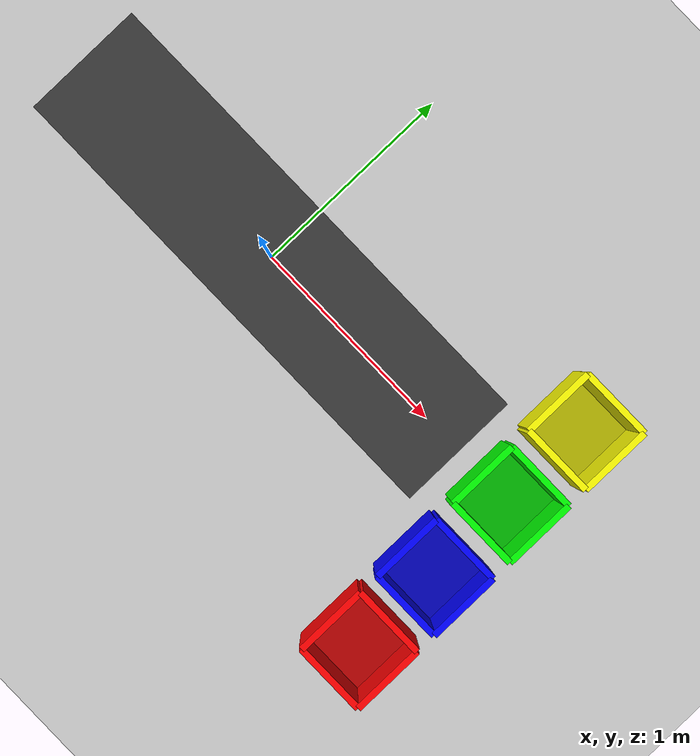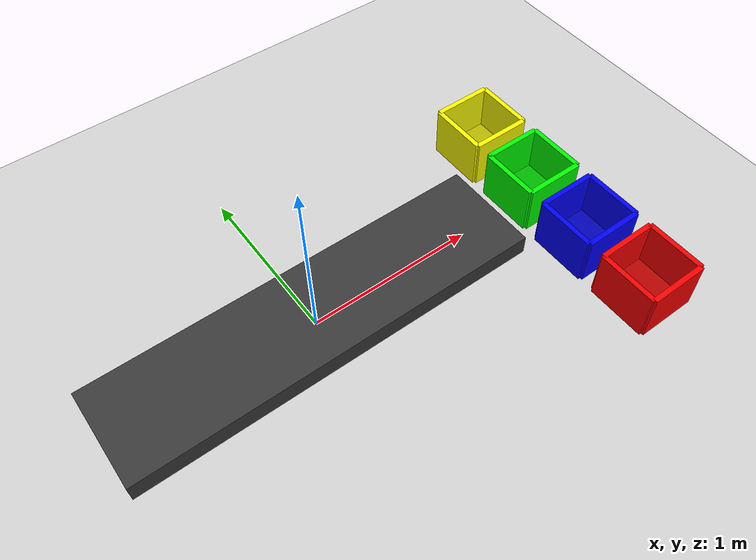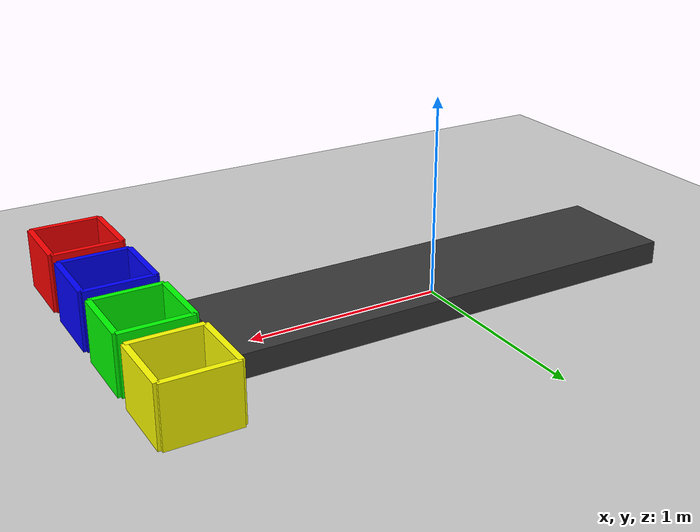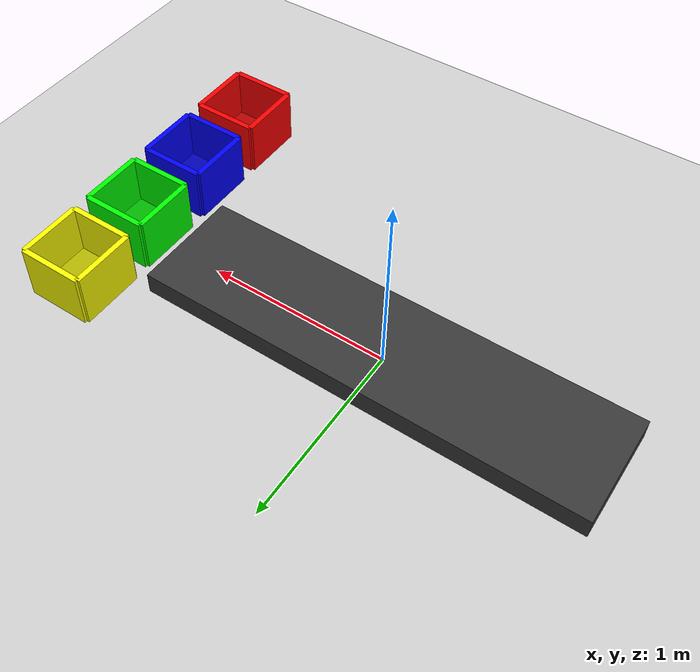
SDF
<?xml version="1.0" ?>
<sdf version="1.6">
  <world name="default">

    <include>
      <uri>model://ground_plane</uri>
    </include>

    <include>
      <uri>model://sun</uri>
    </include>

    <physics type="ode">
      <gravity>0 0 -9.8</gravity>
      <max_step_size>0.001</max_step_size>
      <real_time_factor>1</real_time_factor>
      <real_time_update_rate>1000</real_time_update_rate>
    </physics>

    <!-- KONVEYÖR ARTIK DOĞRUDAN WORLD İÇİNDE -->
    <model name="ws_conveyor_belt">
      <static>true</static>
      <pose>0 0 0.06 0 0 0</pose>

      <link name="belt">
        <pose>0 0 0 0 0 0</pose>

        <collision name="collision">
          <geometry>
            <box>
              <size>2.4 0.6 0.12</size>
            </box>
          </geometry>
          <surface>
            <friction>
              <ode>
                <mu>100.0</mu>
                <mu2>100.0</mu2>
                <fdir1>1 0 0</fdir1>
                <slip1>0.0</slip1>
                <slip2>0.0</slip2>
              </ode>
            </friction>
            <bounce/>
            <contact>
              <ode>
                <kp>1000000.0</kp>
                <kd>100.0</kd>
                <max_vel>1.0</max_vel>
                <min_depth>0.001</min_depth>
              </ode>
            </contact>
          </surface>
        </collision>

        <visual name="visual">
          <geometry>
            <box>
              <size>2.4 0.6 0.12</size>
            </box>
          </geometry>
          <material>
            <ambient>0.15 0.15 0.15 1</ambient>
            <diffuse>0.22 0.22 0.22 1</diffuse>
            <specular>0.05 0.05 0.05 1</specular>
          </material>
        </visual>
      </link>

      <plugin name="conveyor_motion_plugin" filename="/home/ertugrulbasoren/waste_sorting_ws/devel/lib/libconveyor_motion_plugin.so">
        <belt_center>0 0 0.18</belt_center>
        <belt_size>2.4 0.6 0.12</belt_size>
        <belt_speed>0.22</belt_speed>
        <top_margin>0.20</top_margin>
      </plugin>
    </model>

    <!-- BIN 1 -->
    <model name="trash_bin_blue">
      <static>true</static>
      <pose>1.5 -0.45 0.15 0 0 0</pose>

      <link name="body">
        <visual name="front_wall">
          <pose>0 -0.175 0 0 0 0</pose>
          <geometry><box><size>0.35 0.03 0.30</size></box></geometry>
          <material><ambient>0 0 1 1</ambient><diffuse>0 0 1 1</diffuse></material>
        </visual>

        <visual name="back_wall">
          <pose>0 0.175 0 0 0 0</pose>
          <geometry><box><size>0.35 0.03 0.30</size></box></geometry>
          <material><ambient>0 0 1 1</ambient><diffuse>0 0 1 1</diffuse></material>
        </visual>

        <visual name="left_wall">
          <pose>-0.175 0 0 0 0 0</pose>
          <geometry><box><size>0.03 0.35 0.30</size></box></geometry>
          <material><ambient>0 0 1 1</ambient><diffuse>0 0 1 1</diffuse></material>
        </visual>

        <visual name="right_wall">
          <pose>0.175 0 0 0 0 0</pose>
          <geometry><box><size>0.03 0.35 0.30</size></box></geometry>
          <material><ambient>0 0 1 1</ambient><diffuse>0 0 1 1</diffuse></material>
        </visual>

        <visual name="bottom">
          <pose>0 0 -0.135 0 0 0</pose>
          <geometry><box><size>0.35 0.35 0.03</size></box></geometry>
          <material><ambient>0 0 0.7 1</ambient><diffuse>0 0 0.7 1</diffuse></material>
        </visual>
      </link>
    </model>

    <!-- BIN 2 -->
    <model name="trash_bin_green">
      <static>true</static>
      <pose>1.5 0 0.15 0 0 0</pose>

      <link name="body">
        <visual name="front_wall">
          <pose>0 -0.175 0 0 0 0</pose>
          <geometry><box><size>0.35 0.03 0.30</size></box></geometry>
          <material><ambient>0 1 0 1</ambient><diffuse>0 1 0 1</diffuse></material>
        </visual>

        <visual name="back_wall">
          <pose>0 0.175 0 0 0 0</pose>
          <geometry><box><size>0.35 0.03 0.30</size></box></geometry>
          <material><ambient>0 1 0 1</ambient><diffuse>0 1 0 1</diffuse></material>
        </visual>

        <visual name="left_wall">
          <pose>-0.175 0 0 0 0 0</pose>
          <geometry><box><size>0.03 0.35 0.30</size></box></geometry>
          <material><ambient>0 1 0 1</ambient><diffuse>0 1 0 1</diffuse></material>
        </visual>

        <visual name="right_wall">
          <pose>0.175 0 0 0 0 0</pose>
          <geometry><box><size>0.03 0.35 0.30</size></box></geometry>
          <material><ambient>0 1 0 1</ambient><diffuse>0 1 0 1</diffuse></material>
        </visual>

        <visual name="bottom">
          <pose>0 0 -0.135 0 0 0</pose>
          <geometry><box><size>0.35 0.35 0.03</size></box></geometry>
          <material><ambient>0 0.7 0 1</ambient><diffuse>0 0.7 0 1</diffuse></material>
        </visual>
      </link>
    </model>

    <!-- BIN 3 -->
    <model name="trash_bin_yellow">
      <static>true</static>
      <pose>1.5 0.45 0.15 0 0 0</pose>

      <link name="body">
        <visual name="front_wall">
          <pose>0 -0.175 0 0 0 0</pose>
          <geometry><box><size>0.35 0.03 0.30</size></box></geometry>
          <material><ambient>1 1 0 1</ambient><diffuse>1 1 0 1</diffuse></material>
        </visual>

        <visual name="back_wall">
          <pose>0 0.175 0 0 0 0</pose>
          <geometry><box><size>0.35 0.03 0.30</size></box></geometry>
          <material><ambient>1 1 0 1</ambient><diffuse>1 1 0 1</diffuse></material>
        </visual>

        <visual name="left_wall">
          <pose>-0.175 0 0 0 0 0</pose>
          <geometry><box><size>0.03 0.35 0.30</size></box></geometry>
          <material><ambient>1 1 0 1</ambient><diffuse>1 1 0 1</diffuse></material>
        </visual>

        <visual name="right_wall">
          <pose>0.175 0 0 0 0 0</pose>
          <geometry><box><size>0.03 0.35 0.30</size></box></geometry>
          <material><ambient>1 1 0 1</ambient><diffuse>1 1 0 1</diffuse></material>
        </visual>

        <visual name="bottom">
          <pose>0 0 -0.135 0 0 0</pose>
          <geometry><box><size>0.35 0.35 0.03</size></box></geometry>
          <material><ambient>0.7 0.7 0 1</ambient><diffuse>0.7 0.7 0 1</diffuse></material>
        </visual>
      </link>
    </model>

    <!-- BIN 4 -->
    <model name="trash_bin_red">
      <static>true</static>
      <pose>1.5 -0.9 0.15 0 0 0</pose>

      <link name="body">
        <visual name="front_wall">
          <pose>0 -0.175 0 0 0 0</pose>
          <geometry><box><size>0.35 0.03 0.30</size></box></geometry>
          <material><ambient>1 0 0 1</ambient><diffuse>1 0 0 1</diffuse></material>
        </visual>

        <visual name="back_wall">
          <pose>0 0.175 0 0 0 0</pose>
          <geometry><box><size>0.35 0.03 0.30</size></box></geometry>
          <material><ambient>1 0 0 1</ambient><diffuse>1 0 0 1</diffuse></material>
        </visual>

        <visual name="left_wall">
          <pose>-0.175 0 0 0 0 0</pose>
          <geometry><box><size>0.03 0.35 0.30</size></box></geometry>
          <material><ambient>1 0 0 1</ambient><diffuse>1 0 0 1</diffuse></material>
        </visual>

        <visual name="right_wall">
          <pose>0.175 0 0 0 0 0</pose>
          <geometry><box><size>0.03 0.35 0.30</size></box></geometry>
          <material><ambient>1 0 0 1</ambient><diffuse>1 0 0 1</diffuse></material>
        </visual>

        <visual name="bottom">
          <pose>0 0 -0.135 0 0 0</pose>
          <geometry><box><size>0.35 0.35 0.03</size></box></geometry>
          <material><ambient>0.7 0 0 1</ambient><diffuse>0.7 0 0 1</diffuse></material>
        </visual>
      </link>
    </model>

    <!-- TOP CAMERA -->
    <model name="top_camera">
      <static>true</static>
      <pose>0 0 2.5 0 1.57079632679 0</pose>

      <link name="link">
        <sensor name="camera_sensor" type="camera">
          <always_on>true</always_on>
          <update_rate>30</update_rate>
          <visualize>true</visualize>

          <camera>
            <horizontal_fov>1.3962634</horizontal_fov>
            <image>
              <width>1280</width>
              <height>720</height>
              <format>R8G8B8</format>
            </image>
            <clip>
              <near>0.05</near>
              <far>50</far>
            </clip>
          </camera>

          <plugin name="camera_controller" filename="libgazebo_ros_camera.so">
            <alwaysOn>true</alwaysOn>
            <updateRate>30.0</updateRate>
            <cameraName>top_camera</cameraName>
            <imageTopicName>image_raw</imageTopicName>
            <cameraInfoTopicName>camera_info</cameraInfoTopicName>
            <frameName>top_camera_link</frameName>
          </plugin>
        </sensor>
      </link>
    </model>

  </world>
</sdf>
